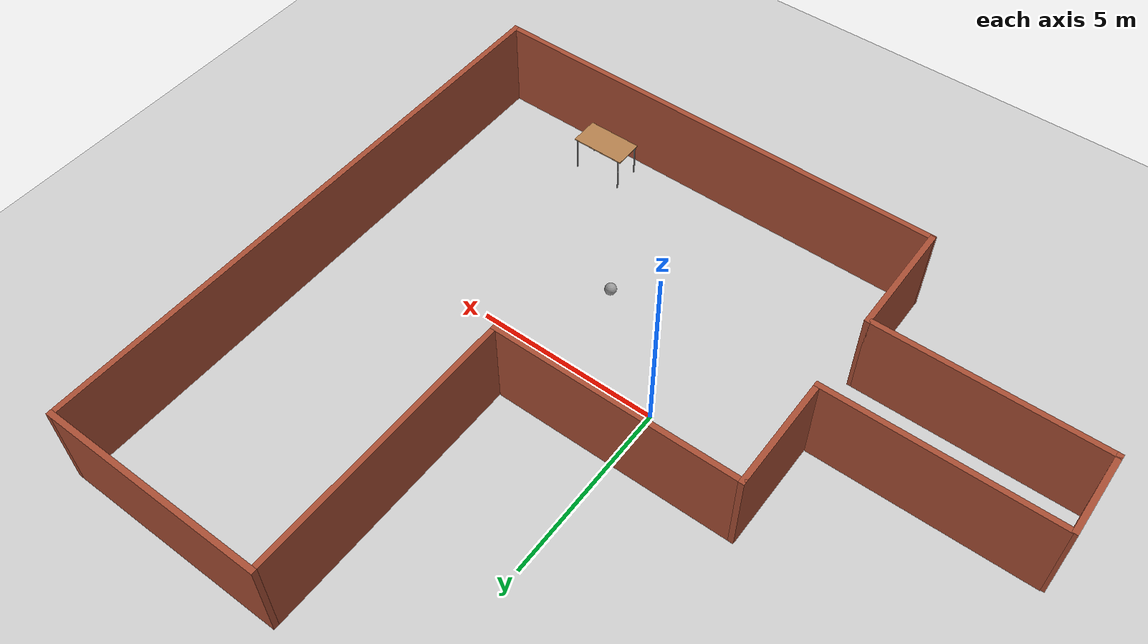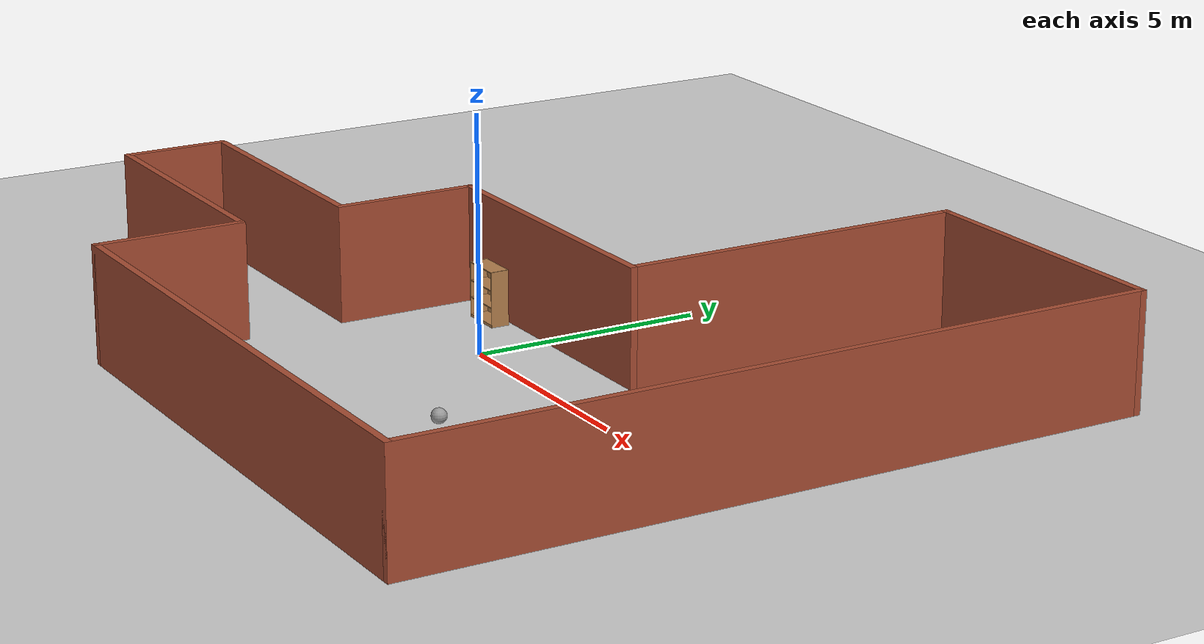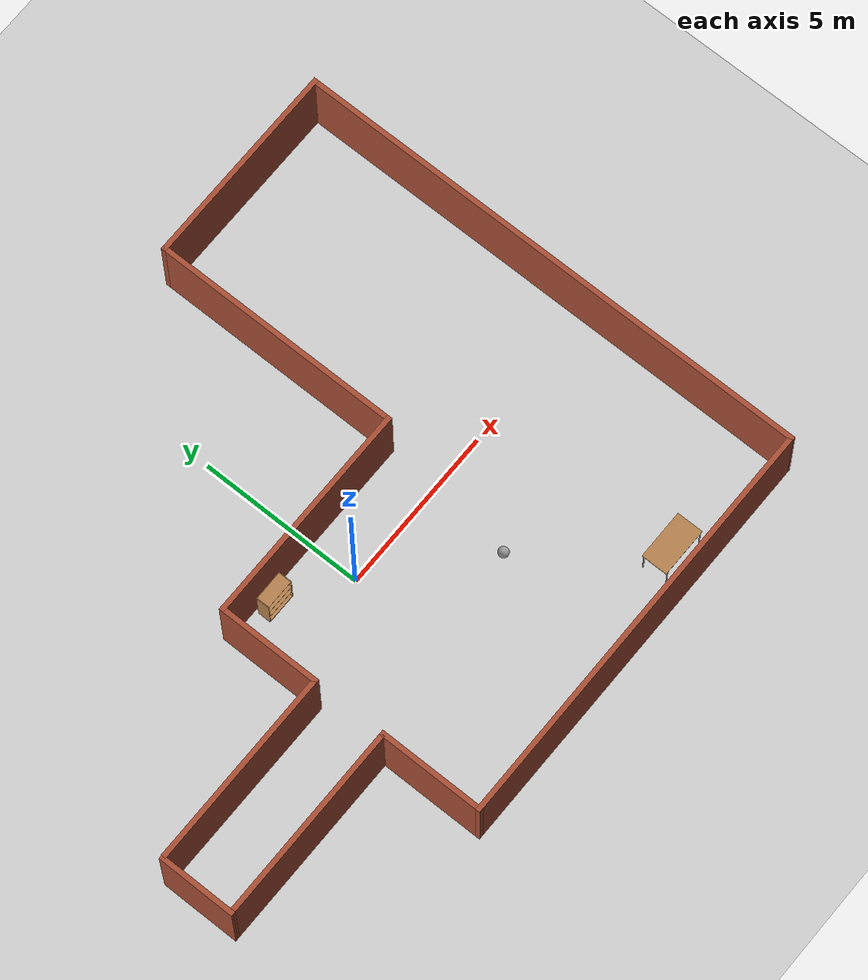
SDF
<sdf version="1.6">
 <world name="default">
  <plugin name="libAbraham_Build_My_World" filename="libAbraham_Build_My_World.so"/>
  <light name="sun" type="directional">
   <pose>0 0 10 0 -0 0</pose>
   <diffuse>0.8 0.8 0.8 1</diffuse>
   <specular>0.2 0.2 0.2 1</specular>
   <attenuation>
    <range>1000</range>
    <constant>0.9</constant>
    <linear>0.01</linear>
    <quadratic>0.001</quadratic>
   </attenuation>
   <direction>-0.5 0.1 -0.9</direction>
  </light>
  <model name="ground_plane">
   <static>1</static>
   <link name="link">
    <collision name="collision">
     <geometry><plane><normal>0 0 1</normal><size>100 100</size></plane></geometry>
     <surface><friction><ode><mu>100</mu><mu2>50</mu2></ode></friction></surface>
    </collision>
    <visual name="visual">
     <cast_shadows>0</cast_shadows>
     <geometry><plane><normal>0 0 1</normal><size>100 100</size></plane></geometry>
     <material>
      <script><uri>file://media/materials/scripts/gazebo.material</uri><name>Gazebo/Grey</name></script>
     </material>
    </visual>
   </link>
  </model>
  <gravity>0 0 -9.8</gravity>
  <magnetic_field>6e-06 2.3e-05 -4.2e-05</magnetic_field>
  <atmosphere type="adiabatic"/>
  <physics name="default_physics" default="0" type="ode">
   <max_step_size>0.001</max_step_size>
   <real_time_factor>1</real_time_factor>
   <real_time_update_rate>1000</real_time_update_rate>
  </physics>
  <scene><ambient>0.4 0.4 0.4 1</ambient><background>0.7 0.7 0.7 1</background><shadows>1</shadows></scene>
  <spherical_coordinates>
   <surface_model>EARTH_WGS84</surface_model>
   <latitude_deg>0</latitude_deg>
   <longitude_deg>0</longitude_deg>
   <elevation>0</elevation>
   <heading_deg>0</heading_deg>
  </spherical_coordinates>
  <model name="building2">
   <pose>0.084804 1.14531 0 0 -0 0</pose>
   <link name="Wall_1">
    <collision name="Wall_1_Collision">
     <geometry><box><size>3.17238 0.15 2.5</size></box></geometry>
     <pose>0 0 1.25 0 -0 0</pose>
    </collision>
    <visual name="Wall_1_Visual">
     <pose>0 0 1.25 0 -0 0</pose>
     <geometry><box><size>3.17238 0.15 2.5</size></box></geometry>
     <material>
      <script><uri>file://media/materials/scripts/gazebo.material</uri><name>Gazebo/Bricks</name></script>
      <ambient>1 1 1 1</ambient>
     </material>
     <meta><layer>0</layer></meta>
    </visual>
    <pose>-3.375 -1.08619 0 0 -0 1.5708</pose>
   </link>
   <link name="Wall_14">
    <collision name="Wall_14_Collision">
     <geometry><box><size>2.3575 0.15 2.5</size></box></geometry>
     <pose>0 0 1.25 0 -0 0</pose>
    </collision>
    <visual name="Wall_14_Visual">
     <pose>0 0 1.25 0 -0 0</pose>
     <geometry><box><size>2.3575 0.15 2.5</size></box></geometry>
     <material>
      <script><uri>file://media/materials/scripts/gazebo.material</uri><name>Gazebo/Bricks</name></script>
      <ambient>1 1 1 1</ambient>
     </material>
     <meta><layer>0</layer></meta>
    </visual>
    <pose>-9.325 -3.72125 0 0 0 -1.5708</pose>
   </link>
   <link name="Wall_17">
    <collision name="Wall_17_Collision">
     <geometry><box><size>16 0.15 2.5</size></box></geometry>
     <pose>0 0 1.25 0 -0 0</pose>
    </collision>
    <visual name="Wall_17_Visual">
     <pose>0 0 1.25 0 -0 0</pose>
     <geometry><box><size>16 0.15 2.5</size></box></geometry>
     <material>
      <script><uri>file://media/materials/scripts/gazebo.material</uri><name>Gazebo/Bricks</name></script>
      <ambient>1 1 1 1</ambient>
     </material>
     <meta><layer>0</layer></meta>
    </visual>
    <pose>9.325 0 0 0 -0 1.5708</pose>
   </link>
   <link name="Wall_23">
    <collision name="Wall_23_Collision">
     <geometry><box><size>6.75 0.15 2.5</size></box></geometry>
     <pose>0 0 1.25 0 -0 0</pose>
    </collision>
    <visual name="Wall_23_Visual">
     <pose>0 0 1.25 0 -0 0</pose>
     <geometry><box><size>6.75 0.15 2.5</size></box></geometry>
     <material>
      <script><uri>file://media/materials/scripts/gazebo.material</uri><name>Gazebo/Bricks</name></script>
      <ambient>1 1 1 1</ambient>
     </material>
     <meta><layer>0</layer></meta>
    </visual>
    <pose>-0.075 0.425 0 0 -0 0</pose>
   </link>
   <link name="Wall_27">
    <collision name="Wall_27_Collision">
     <geometry><box><size>6.25 0.15 2.5</size></box></geometry>
     <pose>0 0 1.25 0 -0 0</pose>
    </collision>
    <visual name="Wall_27_Visual">
     <pose>0 0 1.25 0 -0 0</pose>
     <geometry><box><size>6.25 0.15 2.5</size></box></geometry>
     <material>
      <script><uri>file://media/materials/scripts/gazebo.material</uri><name>Gazebo/Bricks</name></script>
      <ambient>1 1 1 1</ambient>
     </material>
     <meta><layer>0</layer></meta>
    </visual>
    <pose>6.275 7.925 0 0 -0 3.14159</pose>
   </link>
   <link name="Wall_28">
    <collision name="Wall_28_Collision">
     <geometry><box><size>7.5 0.15 2.5</size></box></geometry>
     <pose>0 0 1.25 0 -0 0</pose>
    </collision>
    <visual name="Wall_28_Visual">
     <pose>0 0 1.25 0 -0 0</pose>
     <geometry><box><size>7.5 0.15 2.5</size></box></geometry>
     <material>
      <script><uri>file://media/materials/scripts/gazebo.material</uri><name>Gazebo/Bricks</name></script>
      <ambient>1 1 1 1</ambient>
     </material>
     <meta><layer>0</layer></meta>
    </visual>
    <pose>3.225 4.25 0 0 0 -1.5708</pose>
   </link>
   <link name="Wall_30">
    <collision name="Wall_30_Collision">
     <geometry><box><size>12.85 0.15 2.5</size></box></geometry>
     <pose>0 0 1.25 0 -0 0</pose>
    </collision>
    <visual name="Wall_30_Visual">
     <pose>0 0 1.25 0 -0 0</pose>
     <geometry><box><size>12.85 0.15 2.5</size></box></geometry>
     <material>
      <script><uri>file://media/materials/scripts/gazebo.material</uri><name>Gazebo/Bricks</name></script>
      <ambient>1 1 1 1</ambient>
     </material>
     <meta><layer>0</layer></meta>
    </visual>
    <pose>2.975 -7.925 0 0 -0 0</pose>
   </link>
   <link name="Wall_32">
    <collision name="Wall_32_Collision">
     <geometry><box><size>6 0.15 2.5</size></box></geometry>
     <pose>0 0 1.25 0 -0 0</pose>
    </collision>
    <visual name="Wall_32_Visual">
     <pose>0 0 1.25 0 -0 0</pose>
     <geometry><box><size>6 0.15 2.5</size></box></geometry>
     <material>
      <script><uri>file://media/materials/scripts/gazebo.material</uri><name>Gazebo/Bricks</name></script>
      <ambient>1 1 1 1</ambient>
     </material>
     <meta><layer>0</layer></meta>
    </visual>
    <pose>-6.4 -4.825 0 0 -0 0</pose>
   </link>
   <link name="Wall_34">
    <collision name="Wall_34_Collision">
     <geometry><box><size>6 0.15 2.5</size></box></geometry>
     <pose>0 0 1.25 0 -0 0</pose>
    </collision>
    <visual name="Wall_34_Visual">
     <pose>0 0 1.25 0 -0 0</pose>
     <geometry><box><size>6 0.15 2.5</size></box></geometry>
     <material>
      <script><uri>file://media/materials/scripts/gazebo.material</uri><name>Gazebo/Bricks</name></script>
      <ambient>1 1 1 1</ambient>
     </material>
     <meta><layer>0</layer></meta>
    </visual>
    <pose>-6.3 -2.59739 0 0 -0 3.14159</pose>
   </link>
   <link name="Wall_5">
    <collision name="Wall_5_Collision">
     <geometry><box><size>3.25 0.15 2.5</size></box></geometry>
     <pose>0 0 1.25 0 -0 0</pose>
    </collision>
    <visual name="Wall_5_Visual">
     <pose>0 0 1.25 0 -0 0</pose>
     <geometry><box><size>3.25 0.15 2.5</size></box></geometry>
     <material>
      <script><uri>file://media/materials/scripts/gazebo.material</uri><name>Gazebo/Bricks</name></script>
      <ambient>1 1 1 1</ambient>
     </material>
     <meta><layer>0</layer></meta>
    </visual>
    <pose>-3.375 -6.375 0 0 -0 1.5708</pose>
   </link>
   <static>1</static>
  </model>
  <model name="bookshelf">
   <static>1</static>
   <link name="link">
    <inertial><mass>1</mass></inertial>
    <collision name="back">
     <pose>0 0.005 0.6 0 -0 0</pose>
     <geometry><box><size>0.9 0.01 1.2</size></box></geometry>
    </collision>
    <visual name="visual1">
     <pose>0 0.005 0.6 0 -0 0</pose>
     <geometry><box><size>0.9 0.01 1.2</size></box></geometry>
     <material>
      <script><uri>file://media/materials/scripts/gazebo.material</uri><name>Gazebo/Wood</name></script>
     </material>
    </visual>
    <collision name="left_side">
     <pose>0.45 -0.195 0.6 0 -0 0</pose>
     <geometry><box><size>0.02 0.4 1.2</size></box></geometry>
    </collision>
    <visual name="visual2">
     <pose>0.45 -0.195 0.6 0 -0 0</pose>
     <geometry><box><size>0.02 0.4 1.2</size></box></geometry>
     <material>
      <script><uri>file://media/materials/scripts/gazebo.material</uri><name>Gazebo/Wood</name></script>
     </material>
    </visual>
    <collision name="right_side">
     <pose>-0.45 -0.195 0.6 0 -0 0</pose>
     <geometry><box><size>0.02 0.4 1.2</size></box></geometry>
    </collision>
    <visual name="visual3">
     <pose>-0.45 -0.195 0.6 0 -0 0</pose>
     <geometry><box><size>0.02 0.4 1.2</size></box></geometry>
     <material>
      <script><uri>file://media/materials/scripts/gazebo.material</uri><name>Gazebo/Wood</name></script>
     </material>
    </visual>
    <collision name="bottom">
     <pose>0 -0.195 0.03 0 -0 0</pose>
     <geometry><box><size>0.88 0.4 0.06</size></box></geometry>
    </collision>
    <visual name="visual4">
     <pose>0 -0.195 0.03 0 -0 0</pose>
     <geometry><box><size>0.88 0.4 0.06</size></box></geometry>
     <material>
      <script><uri>file://media/materials/scripts/gazebo.material</uri><name>Gazebo/Wood</name></script>
     </material>
    </visual>
    <collision name="top">
     <pose>0 -0.195 1.19 0 -0 0</pose>
     <geometry><box><size>0.88 0.4 0.02</size></box></geometry>
    </collision>
    <visual name="visual5">
     <pose>0 -0.195 1.19 0 -0 0</pose>
     <geometry><box><size>0.88 0.4 0.02</size></box></geometry>
     <material>
      <script><uri>file://media/materials/scripts/gazebo.material</uri><name>Gazebo/Wood</name></script>
     </material>
    </visual>
    <collision name="low_shelf">
     <pose>0 -0.195 0.43 0 -0 0</pose>
     <geometry><box><size>0.88 0.4 0.02</size></box></geometry>
    </collision>
    <visual name="visual6">
     <pose>0 -0.195 0.43 0 -0 0</pose>
     <geometry><box><size>0.88 0.4 0.02</size></box></geometry>
     <material>
      <script><uri>file://media/materials/scripts/gazebo.material</uri><name>Gazebo/Wood</name></script>
     </material>
    </visual>
    <collision name="high_shelf">
     <pose>0 -0.195 0.8 0 -0 0</pose>
     <geometry><box><size>0.88 0.4 0.02</size></box></geometry>
    </collision>
    <visual name="visual7">
     <pose>0 -0.195 0.8 0 -0 0</pose>
     <geometry><box><size>0.88 0.4 0.02</size></box></geometry>
     <material>
      <script><uri>file://media/materials/scripts/gazebo.material</uri><name>Gazebo/Wood</name></script>
     </material>
    </visual>
   </link>
   <pose>-1.79618 1.39003 0 0 -0 0</pose>
  </model>
  <model name="table">
   <static>1</static>
   <link name="link">
    <collision name="surface">
     <pose>0 0 1 0 -0 0</pose>
     <geometry><box><size>1.5 0.8 0.03</size></box></geometry>
     <surface><friction><ode><mu>0.6</mu><mu2>0.6</mu2></ode></friction></surface>
    </collision>
    <visual name="visual1">
     <pose>0 0 1 0 -0 0</pose>
     <geometry><box><size>1.5 0.8 0.03</size></box></geometry>
     <material>
      <script><uri>file://media/materials/scripts/gazebo.material</uri><name>Gazebo/Wood</name></script>
     </material>
    </visual>
    <collision name="front_left_leg">
     <pose>0.68 0.38 0.5 0 -0 0</pose>
     <geometry><cylinder><radius>0.02</radius><length>1</length></cylinder></geometry>
    </collision>
    <visual name="front_left_leg">
     <pose>0.68 0.38 0.5 0 -0 0</pose>
     <geometry><cylinder><radius>0.02</radius><length>1</length></cylinder></geometry>
     <material>
      <script><uri>file://media/materials/scripts/gazebo.material</uri><name>Gazebo/Grey</name></script>
     </material>
    </visual>
    <collision name="front_right_leg">
     <pose>0.68 -0.38 0.5 0 -0 0</pose>
     <geometry><cylinder><radius>0.02</radius><length>1</length></cylinder></geometry>
    </collision>
    <visual name="front_right_leg">
     <pose>0.68 -0.38 0.5 0 -0 0</pose>
     <geometry><cylinder><radius>0.02</radius><length>1</length></cylinder></geometry>
     <material>
      <script><uri>file://media/materials/scripts/gazebo.material</uri><name>Gazebo/Grey</name></script>
     </material>
    </visual>
    <collision name="back_right_leg">
     <pose>-0.68 -0.38 0.5 0 -0 0</pose>
     <geometry><cylinder><radius>0.02</radius><length>1</length></cylinder></geometry>
    </collision>
    <visual name="back_right_leg">
     <pose>-0.68 -0.38 0.5 0 -0 0</pose>
     <geometry><cylinder><radius>0.02</radius><length>1</length></cylinder></geometry>
     <material>
      <script><uri>file://media/materials/scripts/gazebo.material</uri><name>Gazebo/Grey</name></script>
     </material>
    </visual>
    <collision name="back_left_leg">
     <pose>-0.68 0.38 0.5 0 -0 0</pose>
     <geometry><cylinder><radius>0.02</radius><length>1</length></cylinder></geometry>
    </collision>
    <visual name="back_left_leg">
     <pose>-0.68 0.38 0.5 0 -0 0</pose>
     <geometry><cylinder><radius>0.02</radius><length>1</length></cylinder></geometry>
     <material>
      <script><uri>file://media/materials/scripts/gazebo.material</uri><name>Gazebo/Grey</name></script>
     </material>
    </visual>
   </link>
   <pose>5.66944 -5.91587 0 0 -0 0</pose>
  </model>
  <model name="my_ball2">
   <link name="link_0">
    <inertial>
     <mass>1</mass>
     <inertia><ixx>0.1</ixx><ixy>0</ixy><ixz>0</ixz><iyy>0.1</iyy><iyz>0</iyz><izz>0.1</izz></inertia>
    </inertial>
    <visual name="visual">
     <geometry><sphere><radius>0.16</radius></sphere></geometry>
     <material>
      <lighting>1</lighting>
      <script><uri>file://media/materials/scripts/gazebo.material</uri><name>Gazebo/Grey</name></script>
      <shader type="pixel"><normal_map>__default__</normal_map></shader>
      <ambient>1 1 1 1</ambient>
      <diffuse>1 1 1 1</diffuse>
      <specular>1 1 1 1</specular>
      <emissive>1 1 1 1</emissive>
     </material>
    </visual>
    <collision name="collision">
     <geometry><sphere><radius>0.16</radius></sphere></geometry>
     <surface>
      <friction>
       <ode><mu>1</mu><mu2>1</mu2><fdir1>0 0 0</fdir1><slip1>0</slip1><slip2>0</slip2></ode>
       <torsional>
        <coefficient>1</coefficient>
        <patch_radius>0</patch_radius>
        <surface_radius>0</surface_radius>
        <use_patch_radius>1</use_patch_radius>
        <ode><slip>0</slip></ode>
       </torsional>
      </friction>
      <bounce><restitution_coefficient>0</restitution_coefficient><threshold>1e+06</threshold></bounce>
      <contact>
       <collide_without_contact>0</collide_without_contact>
       <collide_without_contact_bitmask>1</collide_without_contact_bitmask>
       <collide_bitmask>1</collide_bitmask>
       <ode>
        <soft_cfm>0</soft_cfm>
        <soft_erp>0.2</soft_erp>
        <kp>1e+13</kp>
        <kd>1</kd>
        <max_vel>0.01</max_vel>
        <min_depth>0</min_depth>
       </ode>
       <bullet>
        <split_impulse>1</split_impulse>
        <split_impulse_penetration_threshold>-0.01</split_impulse_penetration_threshold>
        <soft_cfm>0</soft_cfm>
        <soft_erp>0.2</soft_erp>
        <kp>1e+13</kp>
        <kd>1</kd>
       </bullet>
      </contact>
     </surface>
    </collision>
   </link>
   <static>0</static>
   <pose>3 -2.5 0.1 0 -0 0</pose>
  </model>
 </world>
</sdf>
